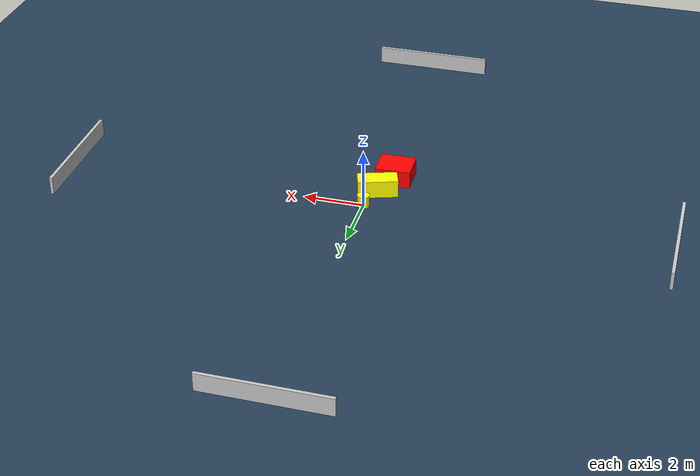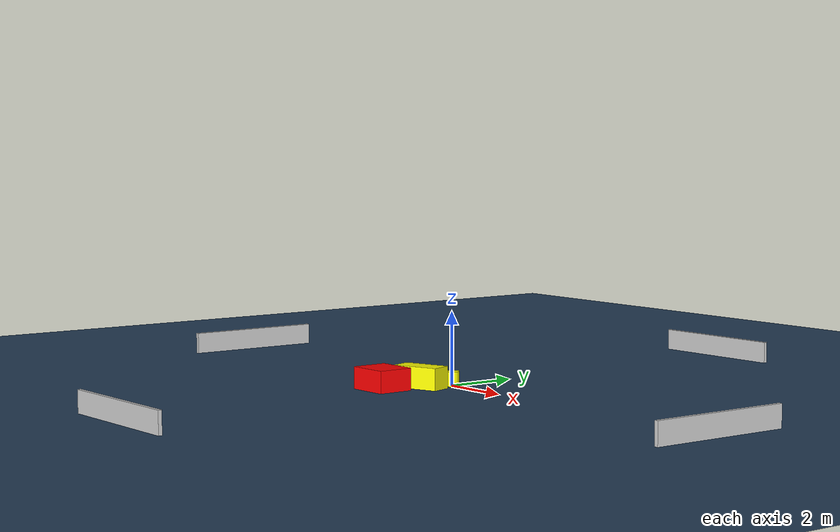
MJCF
<?xml version="1.0" ?>
<mujoco model="generated_environment">
  <option timestep="0.01" integrator="RK4" cone="elliptic"/>
  <default>
    <geom density="1"/>
  </default>
  <asset>
    <texture builtin="gradient" height="3072" name="skybox" rgb1="0.3 0.5 0.7" rgb2="0 0 0" type="skybox" width="512"/>
    <texture builtin="checker" height="300" name="groundplane" rgb1="0.2 0.3 0.4" rgb2="0.1 0.2 0.3" type="2d" width="300"/>
    <material name="groundplane" reflectance="0.2" texrepeat="5 5" texture="groundplane"/>
  </asset>
  <worldbody>
    <light dir="0 0 -1" directional="true" pos="0 0 1.5"/>
    <geom condim="3" friction="0.5 0.005 0.001" material="groundplane" name="floor" pos="0 0 0" size="0 0 0.05" type="plane"/>
    <body name="walls">
      <geom name="wall_1" condim="4" pos="-10.0 0.0 0.3" rgba="0.800000011920929 0.800000011920929 0.800000011920929 1.0" size="0.05 2.0 0.3" type="box"/>
      <geom name="wall_2" condim="4" pos="10.0 0.0 0.3" rgba="0.800000011920929 0.800000011920929 0.800000011920929 1.0" size="0.05 2.0 0.3" type="box"/>
      <geom name="wall_3" condim="4" pos="0.0 -10.0 0.3" rgba="0.800000011920929 0.800000011920929 0.800000011920929 1.0" size="2.0 0.05 0.3" type="box"/>
      <geom name="wall_4" condim="4" pos="0.0 10.0 0.3" rgba="0.800000011920929 0.800000011920929 0.800000011920929 1.0" size="2.0 0.05 0.3" type="box"/>
    </body>
    <body name="robot">
      <joint name="joint_x" type="slide" pos="0 0 0" axis="1 0 0"/>
      <joint name="joint_y" type="slide" pos="0 0 0" axis="0 1 0"/>
      <geom name="robot" type="cylinder" pos="0.0 0.0 0.2" size="0.2 0.2 0.0" mass="5.0" friction="1.0 0.005 0.0001" condim="4" rgba="1.0 1.0 0.0 1.0"/>
    </body>
    <body name="obstacle_1_movable">
      <geom name="obstacle_1_movable" condim="4" pos="-0.24296759604610124 -0.8564110269016306 0.3" euler="0 0 108.54430800364202" friction="0.0 0.005 0.001" rgba="1.0 1.0 0.0 1.0" size="0.29587890630673774 0.6583857779553699 0.3" type="box" mass="0.1"/>
      <joint type="free"/>
    </body>
    <body name="obstacle_2_static">
      <geom name="obstacle_2_static" condim="4" pos="-0.5980299553367512 -1.8655550109924892 0.3" euler="0 0 271.27982932817974" friction="0.0 0.005 0.001" rgba="1.0 0.0 0.0 1.0" size="0.4974989882320608 0.5869246376067099 0.3" type="box"/>
    </body>
  </worldbody>
  <actuator>
    <motor name="actuator_x" joint="joint_x" gear="1" ctrlrange="-1 1"/>
    <motor name="actuator_y" joint="joint_y" gear="1" ctrlrange="-1 1"/>
  </actuator>
</mujoco>
